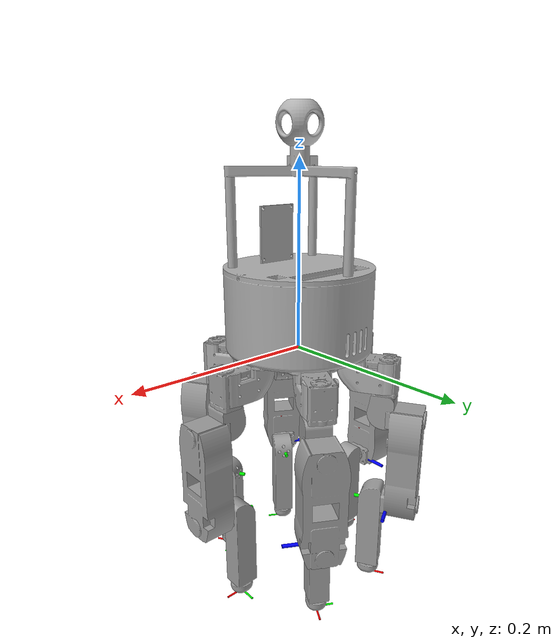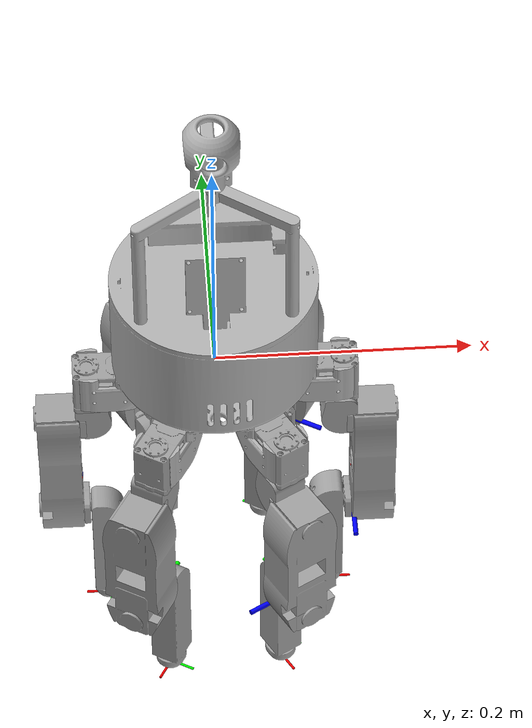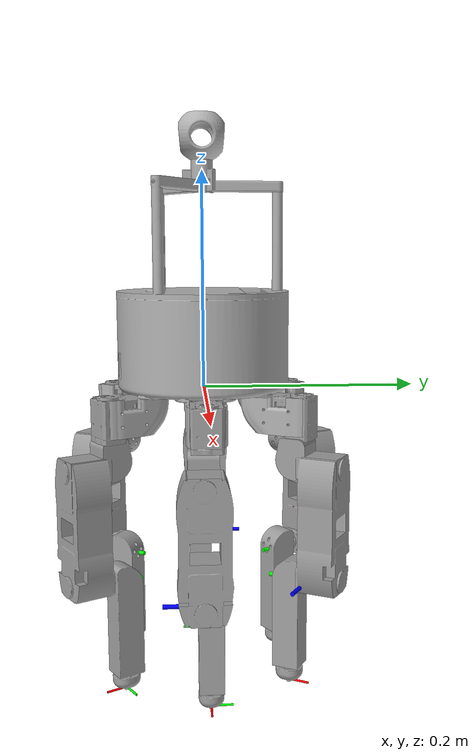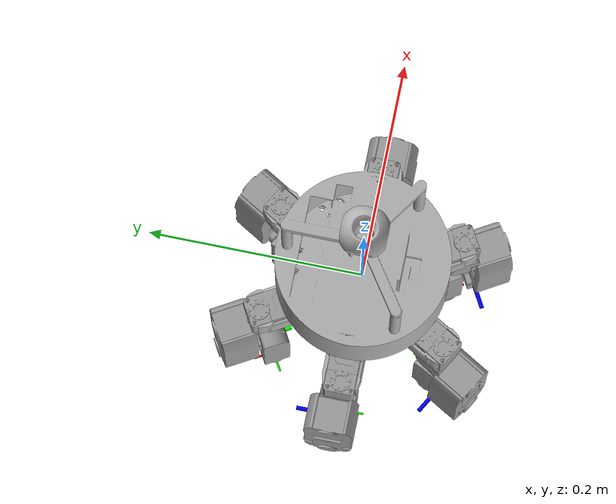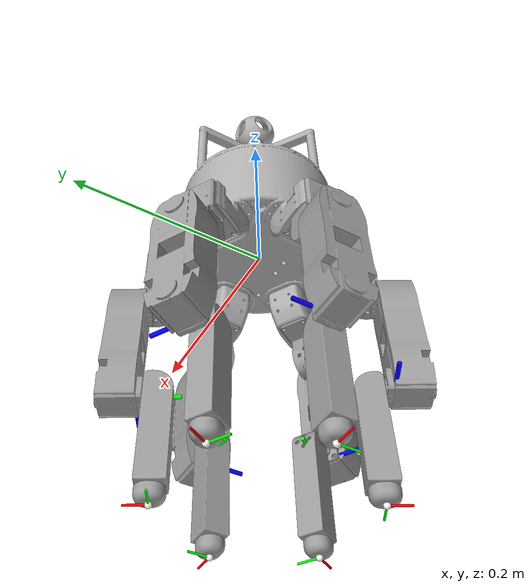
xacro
<?xml version="1.0" ?>
<robot name = "hexa_leg_pod" xmlns:xacro = "http://www.ros.org/wiki/xacro">
    <!-- include -->
    <xacro:include filename="$(find dual_leg_controller)/model/urdf/materials.xacro" />

    <!--Setting property-->
    <xacro:property name="motor_height" value="0.02" /> <!--motorを下げる高さ[m]-->
    <xacro:property name="cylinder_radius" value="0.095" /> <!--bodyの半径[m]-->

    <!-- 脚設定マクロ-->
    <xacro:macro name="limb_macro" params="limb_id arc">
        <!-- モーターの設定 -->
        <link name ="motor${limb_id}">
            <!--  物理シミュレーションのための質量特性を定義 -->
            <inertial>
                <!-- 慣性フレームの位置と向き -->
                <origin xyz ="0 0 0" rpy ="0 0 0"/>
                <!-- 部品の質量（kg単位） -->
                <mass  value = "0.125"/>
                <!--  慣性テンソル（物体の回転に対する抵抗を定義する行列） -->
                <!-- ixx, iyy, izz - 各軸周りの慣性モーメント -->
                <!-- ixy, iyz, ixz - 慣性乗積（オフ対角成分） -->
                <inertia ixx ="0.1" iyy ="0.1" izz ="0.1" ixy ="0.0" iyz ="0.0" ixz = "0.0"/>
            </inertial>

            <!-- 視覚・表示の設定 -->
            <visual>
                <!-- 表示モデルの位置と向き -->
                <origin xyz ="0 0.005 0" rpy ="0 0 0"/>
                <!--  形状を定義 -->
                <geometry>
                    <mesh filename ="package://dual_leg_controller/model/meshes/motor.stl" scale ="0.001 0.001 0.001"/>
                </geometry>
                <material name ="steel_satin"/>
            </visual>

            <!-- 衝突検出形状 (物理シミュレーション用)の設定 -->
            <collision>
                <!-- 衝突モデルの位置と向き -->
                <origin xyz="0 0.005 0" rpy="0 0 0"/>
                <!--  形状を定義 -->
                <geometry>
                    <mesh filename="package://dual_leg_controller/model/meshes/motor.stl" scale="0.001 0.001 0.001"/>
                </geometry>
            </collision>
        </link>

        <!-- coxa_motor と femur_motor をつなぐリンク(leg_coxa)の定義  -->
        <link name="limb${limb_id}_link2">
            <!--  物理シミュレーションのための質量特性を定義 -->
            <inertial>
                <origin xyz="0 0 0" rpy="0 0 0"/>
                <mass value="0.125"/>
                <inertia ixx="0.1" iyy="0.1" izz="0.1" ixy="0.0" iyz="0.0" ixz="0.0"/>
            </inertial>

            <!-- 視覚・表示の設定 -->
            <visual>
                <origin xyz="0 0 -0.045" rpy="0 ${radians(-90)} 0"/>
                <geometry>
                    <mesh filename="package://dual_leg_controller/model/meshes/link1_1.stl" scale="0.001 0.001 0.001"/>
                </geometry>
                <material name="steel_satin"/>
            </visual>

            <!-- 衝突検出形状 (物理シミュレーション用)の設定 -->
            <collision>
                <origin xyz="0 0 -0.045" rpy="0 ${radians(-90)} 0"/>
                <geometry>
                    <mesh filename="package://dual_leg_controller/model/meshes/link1_1.stl" scale="0.001 0.001 0.001"/>
                </geometry>
            </collision>
        </link>

        <!-- femur_motor と tibia_motor をつなぐリンク(leg_fumer)の定義  -->
         <link name="limb${limb_id}_link4">
            <inertial>
                <mass value="0.125"/>
                <inertia ixx="0.1" iyy="0.1" izz="0.1" ixy="0.0" iyz="0.0" ixz="0.0"/>
            </inertial>
            <visual>
                <origin xyz="0.05 -0.055 0" rpy="0 ${radians(180)} ${radians(-90)}"/>
                <geometry>
                    <mesh filename="package://dual_leg_controller/model/meshes/link2_1.stl" scale="0.001 0.001 0.001"/>
                </geometry>
                <material name="steel_satin"/>
            </visual>
            <collision>
                <origin xyz="0.05 -0.055 0" rpy="0 ${radians(180)} ${radians(-90)}"/>
                <geometry>
                    <mesh filename="package://dual_leg_controller/model/meshes/link2_1.stl" scale="0.001 0.001 0.001"/>
                </geometry>
            </collision>
        </link>

        <link name="limb${limb_id}_link6">
            <inertial>
            <origin xyz="0 0 0" rpy="0 0 0"/>
            <mass value="0.125"/>
            <inertia ixx="0.1" iyy="0.1" izz="0.1" ixy="0.0" iyz="0.0" ixz="0.0"/>
            </inertial>
            <visual>
            <origin xyz="0.055 0.038 0" rpy="${radians(180)} 0 ${radians(180)}"/>
            <geometry>
                <mesh filename="package://dual_leg_controller/model/meshes/link3_1.stl" scale="0.001 0.001 0.001"/>
            </geometry>
            <material name="steel_satin"/>
            </visual>
            <collision>
            <origin xyz="0.055 0.038 0" rpy="${radians(180)} 0 ${radians(180)}"/>
            <geometry>
                <mesh filename="package://dual_leg_controller/model/meshes/link3_1.stl" scale="0.001 0.001 0.001"/>
            </geometry>
            </collision>
            <!-- 座標系確認用の軸表示を追加 -->
            <visual name="debug_x_axis">
                <origin xyz="0.02 0 0" rpy="0 ${radians(90)} 0"/>
                <geometry>
                    <cylinder radius="0.002" length="0.04"/>
                </geometry>
                <material name="debug_red">
                    <color rgba="1.0 0.0 0.0 1.0"/>
                </material>
            </visual>

            <visual name="debug_y_axis">
                <origin xyz="0 0.02 0" rpy="${radians(90)} 0 0"/>
                <geometry>
                    <cylinder radius="0.002" length="0.04"/>
                </geometry>
                <material name="debug_green">
                    <color rgba="0.0 1.0 0.0 1.0"/>
                </material>
            </visual>

            <visual name="debug_z_axis">
                <origin xyz="0 0 0.02" rpy="0 0 0"/>
                <geometry>
                    <cylinder radius="0.002" length="0.04"/>
                </geometry>
                <material name="debug_blue">
                    <color rgba="0.0 0.0 1.0 1.0"/>
                </material>
            </visual>
        </link>

        <!-- 脚先（foot_tip）を示す非常に小さなリンク -->
        <link name="limb${limb_id}_foot_tip">
            <inertial>
                <origin xyz="0 0 0" rpy="0 0 0"/>
                <mass value="0.0001"/>
                <inertia ixx="0.00001" iyy="0.00001" izz="0.00001" ixy="0.0" iyz="0.0" ixz="0.0"/>
            </inertial>

            <!-- X軸（前方向）- 赤色 -->
            <visual name="x_axis">
                <origin xyz="0.01 0 0" rpy="0 ${radians(90)} 0"/>
                <geometry>
                    <cylinder radius="0.001" length="0.02"/>
                </geometry>
                <material name="red">
                    <color rgba="1.0 0.0 0.0 1.0"/>
                </material>
            </visual>

            <!-- Y軸（右方向）- 緑色 -->
            <visual name="y_axis">
                <origin xyz="0 0.01 0" rpy="${radians(90)} 0 0"/>
                <geometry>
                    <cylinder radius="0.001" length="0.02"/>
                </geometry>
                <material name="green">
                    <color rgba="0.0 1.0 0.0 1.0"/>
                </material>
            </visual>

            <!-- Z軸（上方向）- 青色 -->
            <visual name="z_axis">
                <origin xyz="0 0 0.01" rpy="0 0 0"/>
                <geometry>
                    <cylinder radius="0.001" length="0.02"/>
                </geometry>
                <material name="blue">
                    <color rgba="0.0 0.0 1.0 1.0"/>
                </material>
            </visual>

            <!-- 座標原点 - 白色 -->
            <visual name="origin">
                <origin xyz="0 0 0" rpy="0 0 0"/>
                <geometry>
                    <sphere radius="0.003"/>
                </geometry>
                <material name="white">
                    <color rgba="1.0 1.0 1.0 1.0"/>
                </material>
            </visual>
        </link>

        <!--joint の定義-->
        <!-- base と motor を固定するジョイント -->
        <joint name="body_motor_fixedjoint_limb${limb_id}" type="fixed">
            <origin xyz="${(cylinder_radius)*cos(radians(arc))} ${(cylinder_radius)*sin(radians(arc))} ${-motor_height}" rpy="0 ${radians(180)} ${radians(270+arc)}"/>
            <parent link="body_link"/>
            <child link="motor${limb_id}"/>
        </joint>

        <!-- motor と leg_coxa　をジョイント-->
        <joint name = "limb${limb_id}_joint1" type = "continuous">
            <origin xyz="0 0 0.05" rpy="0 0 ${radians(180)}"/>
            <parent link="motor${limb_id}"/>
            <child link="limb${limb_id}_link2"/>
            <axis xyz="0.0 0.0 1.0"/>
        </joint>

        <!-- leg_coxa と leg_fumer　をジョイント-->
        <joint name="limb${limb_id}_joint2" type="continuous">
            <origin xyz="0.0 -0.0145 0" rpy="0 ${radians(90)} 0"/>
            <parent link="limb${limb_id}_link2"/>
            <child link="limb${limb_id}_link4"/>
            <axis xyz="0.0 -1.0 0.0"/>
        </joint>

        <!-- leg_fumer と leg_tibia　をジョイント-->
        <joint name="limb${limb_id}_joint3" type="continuous">
            <origin xyz="-0.105 0.0 0" rpy="0 0 0"/>
            <parent link="limb${limb_id}_link4"/>
            <child link="limb${limb_id}_link6"/>
            <axis xyz="0.0 1.0 0.0"/>
        </joint>

        <!-- tibiaリンクと脚先を接続する固定ジョイント -->
        <joint name="limb${limb_id}_foot_joint" type="fixed">
            <!-- tibiaのSTLモデルの先端までの距離を設定 -->
            <origin xyz="-0.103 0.0205 -0.00205" rpy="${radians(-90)} 0 ${radians(-90)}"/>
            <parent link="limb${limb_id}_link6"/>
            <child link="limb${limb_id}_foot_tip"/>
        </joint>

        <!-- トランスミッション -->
        <transmission name="trans${limb_id}_1">
            <type>transmission_interface/SimpleTransmission</type>
            <joint name="limb${limb_id}_joint1">
            <hardwareInterface>hardware_interface/EffortJointInterface</hardwareInterface>
            </joint>
            <actuator name="motor${limb_id}_1">
            <hardwareInterface>hardware_interface/EffortJointInterface</hardwareInterface>
            <mechanicalReduction>1</mechanicalReduction>
            </actuator>
        </transmission>

        <transmission name="trans${limb_id}_2">
            <type>transmission_interface/SimpleTransmission</type>
            <joint name="limb${limb_id}_joint2">
            <hardwareInterface>hardware_interface/EffortJointInterface</hardwareInterface>
            </joint>
            <actuator name="motor${limb_id}_2">
            <hardwareInterface>hardware_interface/EffortJointInterface</hardwareInterface>
            <mechanicalReduction>1</mechanicalReduction>
            </actuator>
        </transmission>

        <transmission name="trans${limb_id}_3">
            <type>transmission_interface/SimpleTransmission</type>
            <joint name="limb${limb_id}_joint3">
            <hardwareInterface>hardware_interface/EffortJointInterface</hardwareInterface>
            </joint>
            <actuator name="motor${limb_id}_3">
            <hardwareInterface>hardware_interface/EffortJointInterface</hardwareInterface>
            <mechanicalReduction>1</mechanicalReduction>
            </actuator>
        </transmission>
    </xacro:macro>

    <joint name = "body_joint" type="fixed">
        <parent link="base_link"/>
        <child  link="body_link"/>
    </joint>

    <link name="base_link"/> <!--baselink設定-->
    <link name="body_link"> <!--body設定-->
        <inertial>
        <origin xyz="0 0 0" rpy="0 0 0"/>
        <mass value="0.870"/>
        <inertia ixx="0.1" iyy="0.1" izz="0.1" ixy="0.0" iyz="0.0" ixz="0.0"/>
        </inertial>
        <visual>
        <origin xyz="0 0 0" rpy="0 0 0"/>
        <geometry>
            <mesh filename="package://dual_leg_controller/model/meshes/base_link.stl" scale="0.001 0.001 0.001"/>
        </geometry>
        <material name="gray">
            <color rgba="0.7 0.7 0.7 1.0"/>
        </material>
        </visual>
        <collision>
        <origin xyz="0 0 0" rpy="0 0 0"/>
        <geometry>
            <mesh filename="package://dual_leg_controller/model/meshes/base_link.stl" scale="0.001 0.001 0.001"/>
        </geometry>
        </collision>
    </link>

    <!-- 6脚のマクロ呼び出し -->
    <xacro:limb_macro limb_id="0" arc="0"/>
    <xacro:limb_macro limb_id="1" arc="60"/>
    <xacro:limb_macro limb_id="2" arc="120"/>
    <xacro:limb_macro limb_id="3" arc="180"/>
    <xacro:limb_macro limb_id="4" arc="240"/>
    <xacro:limb_macro limb_id="5" arc="300"/>

    <gazebo>
        <plugin name="gazebo_ros_control" filename="libgazebo_ros_control.so">
        <robotNamespace>/hexa_leg</robotNamespace>
        </plugin>
    </gazebo>

</robot>

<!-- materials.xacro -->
<robot name="multileg_urdf" xmlns:xacro="http://www.ros.org/wiki/xacro" >

<material name="silver_default">
  <color rgba="0.700 0.700 0.700 1.000"/>
</material>
<material name="steel_satin">
  <color rgba="0.6274509803921569 0.6274509803921569 0.6274509803921569 1.0"/>
</material>

</robot>
